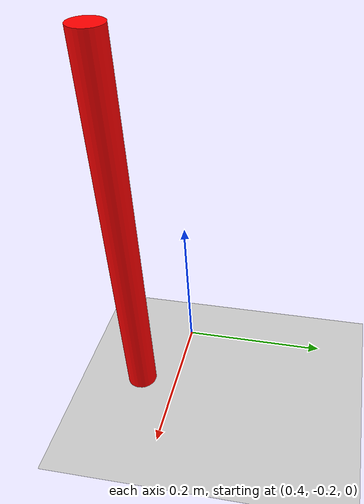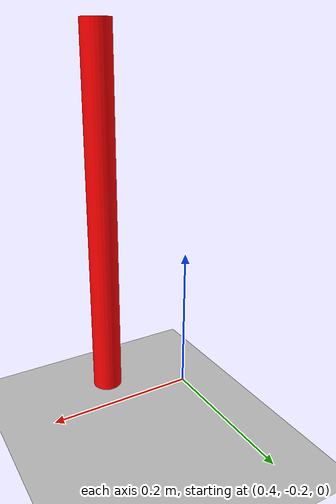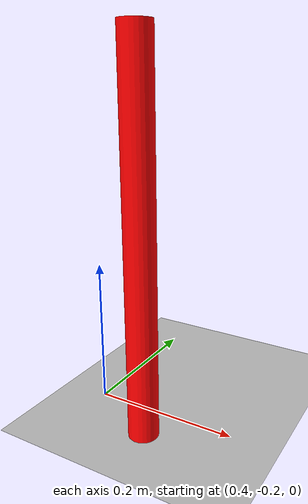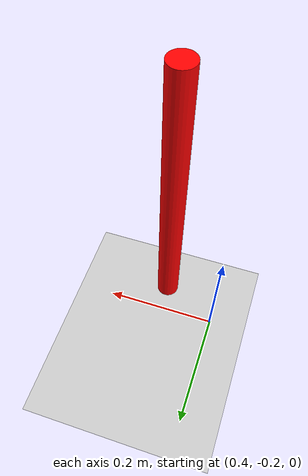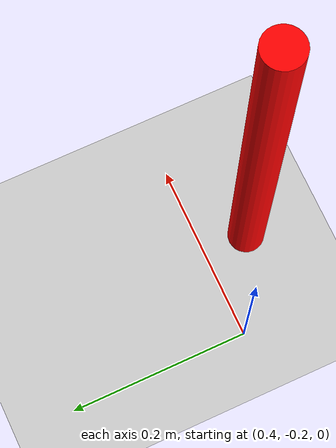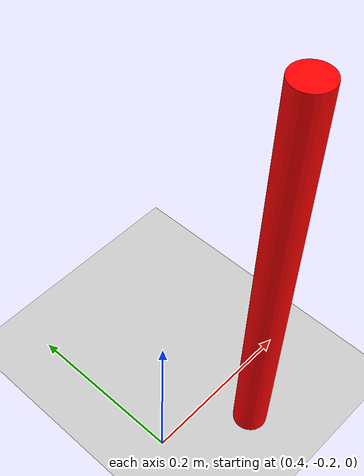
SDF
<?xml version="1.0" ?>

<sdf version="1.6">
  <world name="default">
    <!-- Plugin for simulating physics -->
    <plugin
      filename="gz-sim-physics-system"
      name="gz::sim::systems::Physics">
    </plugin>

    <!-- Plugin for handling user commands -->
    <plugin
      filename="gz-sim-user-commands-system"
      name="gz::sim::systems::UserCommands">
    </plugin>

    <!-- Plugin for broadcasting scene updates -->
    <plugin
      filename="gz-sim-scene-broadcaster-system"
      name="gz::sim::systems::SceneBroadcaster">
    </plugin>

    <!-- To add realistic gravity, do: 0.0 0.0 -9.8, otherwise do 0.0 0.0 0.0 -->
    <gravity>0.0 0.0 -9.8</gravity>

    <!-- Include a model of the Sun from an external URI -->
    <include>
      <uri>
        https://fuel.gazebosim.org/1.0/OpenRobotics/models/Sun
      </uri>
    </include>

    <!-- Include a model of the Ground Plane from an external URI -->
    <include>
      <uri>
        https://fuel.gazebosim.org/1.0/OpenRobotics/models/Ground Plane
      </uri>
    </include>

    <!-- Include the cylinder model -->
    <include>
      <uri>model://pick_place_demo_cylinder</uri>
      <name>cylinder</name>
      <pose>0.5 -0.25 0.25 0 0 0</pose>
    </include>

    <!-- Define scene properties -->
    <scene>
      <shadows>false</shadows>
    </scene>

  </world>
</sdf>

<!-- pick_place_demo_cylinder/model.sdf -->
<sdf version="1.6">
  <model name="pick_place_demo_cylinder">
    <static>false</static>
    <link name="link">
      <inertial>
        <mass>0.050</mass>
        <inertia>
          <ixx>0.000000204</ixx>
          <ixy>0</ixy>
          <ixz>0</ixz>
          <iyy>0.000000204</iyy>
          <iyz>0</iyz>
          <izz>0.000000039</izz>
        </inertia>
      </inertial>
      <collision name="collision">
        <geometry>
          <cylinder>
            <radius>0.02</radius>
            <length>0.5</length>
          </cylinder>
        </geometry>
        <surface>
          <friction>
            <ode>
              <mu>0.8</mu>
              <mu2>0.8</mu2>
              <fdir1>0 0 1</fdir1>
              <slip1>0.001</slip1>
              <slip2>0.001</slip2>
            </ode>
            <torsional>
              <coefficient>0.1</coefficient>
              <surface_radius>0.015</surface_radius>
              <use_patch_radius>true</use_patch_radius>
            </torsional>
          </friction>
          <contact>
            <ode>
              <kp>1e5</kp>
              <kd>10</kd>
              <max_vel>0.1</max_vel>
              <min_depth>0.001</min_depth>
              <soft_cfm>0.01</soft_cfm>
              <soft_erp>0.2</soft_erp>
            </ode>
          </contact>
          <bounce>
            <restitution_coefficient>0.2</restitution_coefficient>
            <threshold>0.01</threshold>
          </bounce>
        </surface>
      </collision>
      <visual name="visual">
        <geometry>
          <cylinder>
            <radius>0.02</radius>
            <length>0.5</length>
          </cylinder>
        </geometry>
        <material>
          <ambient>1.0 0.0 0.0 1</ambient>
          <diffuse>1.0 0.0 0.0 1</diffuse>
          <specular>0.5 0.5 0.5 1</specular>
          <emissive>0.1 0 0 1</emissive>
        </material>
      </visual>
    </link>
  </model>
</sdf>
